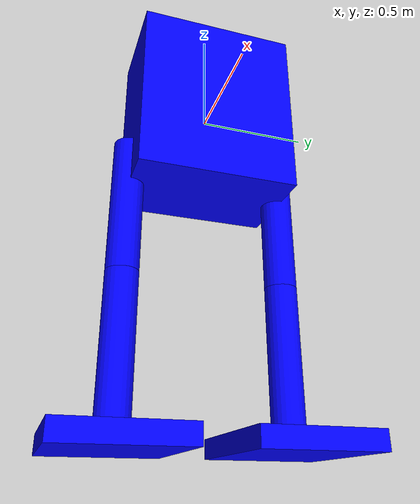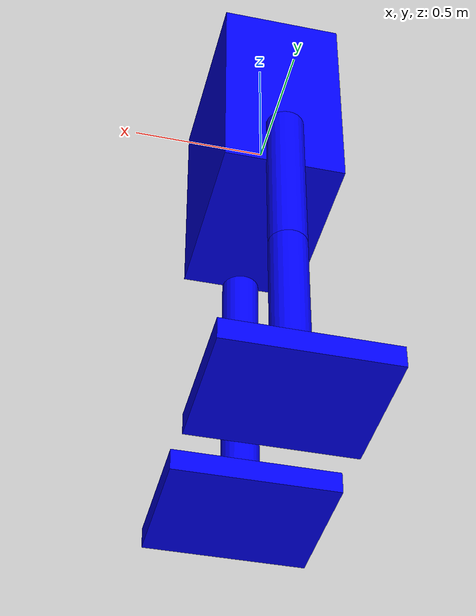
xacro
<?xml version="1.0"?>
<robot name="bipedal_robot" xmlns:xacro="http://www.ros.org/wiki/xacro">
    <xacro:include filename="$(find bipedal_robot)/urdf/core_bipedal_robot.urdf.xacro"/>

    <link name="dummy"></link>

    <joint name="dummy_joint" type="fixed">
        <parent link="dummy"/>
        <child link="base_link"/>
    </joint>

	<xacro:macro name="transmission" params="joint">
        <transmission name="${joint}_transmission">
            <type>transmission_interface/SimpleTransmission</type>
            <joint name="${joint}">
                <hardwareInterface>hardware_interface/EffortJointInterface</hardwareInterface>
            </joint>
            <actuator name="${joint}_motor">
                <hardwareInterface>hardware_interface/EffortJointInterface</hardwareInterface>
                <mechanicalReduction>1</mechanicalReduction>
            </actuator>
        </transmission>
	</xacro:macro>

	<xacro:macro name="contact" params="link">
        <gazebo reference="${link}">
            <mu1>10000.0</mu1>
            <mu2>10000.0</mu2>
            <minDepth>0.001</minDepth>
            <maxVel value="0.0"/>
        </gazebo>
	</xacro:macro>

	<gazebo reference="right_foot">
	    <collision name='right_foot_collision_collision'>
	        <surface>
                <bounce>
                    <restitution_coefficient>0.9</restitution_coefficient>
                    <threshold>0.0</threshold>
                </bounce>
            </surface>
	    </collision>
	</gazebo>

	<gazebo reference="left_foot">
	    <collision name='left_foot_collision_collision'>
	        <surface>
                <bounce>
                    <restitution_coefficient>0.9</restitution_coefficient>
                    <threshold>0.0</threshold>
                </bounce>
            </surface>
	    </collision>
	</gazebo>

	<xacro:transmission joint="left_hip_joint1"/>
	<xacro:transmission joint="left_hip_joint2"/>
	<xacro:transmission joint="left_knee_joint"/>
	<xacro:transmission joint="left_ankle_joint1"/>
	<xacro:transmission joint="left_ankle_joint2"/>
	<xacro:transmission joint="right_hip_joint1"/>
	<xacro:transmission joint="right_hip_joint2"/>
	<xacro:transmission joint="right_knee_joint"/>
	<xacro:transmission joint="right_ankle_joint1"/>
	<xacro:transmission joint="right_ankle_joint2"/>

	<xacro:contact link="base_link"/>
	<xacro:contact link="left_thigh"/>
	<xacro:contact link="left_shin"/>
	<xacro:contact link="left_foot"/>
	<xacro:contact link="right_thigh"/>
	<xacro:contact link="right_shin"/>
	<xacro:contact link="right_foot"/>

    <gazebo>
        <plugin name="gazebo_ros_control" filename="libgazebo_ros_control.so">
        </plugin>
    </gazebo>

    <gazebo reference="left_foot">
        <sensor name="left_foot_sensor" type="contact">
            <always_on>true</always_on>
            <contact>
                <collision>left_foot_collision_collision</collision>
            </contact>
            <plugin name="gazebo_ros_bumper_plugin" filename="libgazebo_ros_bumper.so">
                <bumperTopicName>left_foot_contact</bumperTopicName>
                <frameName>left_foot</frameName>
            </plugin>
        </sensor>
    </gazebo>

    <gazebo reference="right_foot">
        <sensor name="right_foot_sensor" type="contact">
            <always_on>true</always_on>
            <contact>
                <collision>right_foot_collision_collision</collision>
            </contact>
            <plugin name="gazebo_ros_bumper_plugin" filename="libgazebo_ros_bumper.so">
                <bumperTopicName>right_foot_contact</bumperTopicName>
                <frameName>right_foot</frameName>
            </plugin>
        </sensor>
    </gazebo>
</robot>

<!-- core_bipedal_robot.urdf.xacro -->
<robot name="bipedal_robot" xmlns:xacro="http://www.ros.org/wiki/xacro">
    <xacro:property name="torso_height" value="0.8"/>
    <xacro:property name="torso_width" value="0.7"/>
    <xacro:property name="thigh_len" value="0.6"/>
    <xacro:property name="shin_len" value="0.6"/>
    <xacro:property name="foot_thickness" value="0.08"/>

    <!-- Base link -->
	<link name="base_link">
		<visual>
			<origin xyz="0 0 0" rpy="0 0 0"/>
			<geometry>
				<box size="0.45 ${torso_width} ${torso_height}"/>
			</geometry>
			<material name="blue">
				<color rgba="0 0 1 1"/>
			</material>
		</visual>
		<collision name="base_link">
		    <origin xyz="0 0 0" rpy="0 0 0"/>
			<geometry>
				<box size="0.3 0.7 ${torso_height}"/>
			</geometry>
		</collision>
		<inertial>
            <mass value="1.1"/>
		    <origin xyz="0 0 0"/>
		    <inertia ixx="0.1" ixy="0.0" ixz="0.0" iyy="0.1" iyz="0.0" izz="0.1"/>
		</inertial>
	</link>

	<!-- Leg links and joints -->
	<xacro:macro name="leg" params="name shift hip_left_limit hip_right_limit">
	    <link name="${name}_hip_link">
	        <inertial>
                <mass value="0.01"/>
                <origin xyz="0 0 0"/>
                <inertia ixx="0.1" ixy="0.0" ixz="0.0" iyy="0.1" iyz="0.0" izz="0.1"/>
            </inertial>
	    </link>

        <link name="${name}_thigh">
            <visual>
                <origin xyz="0 0 ${-thigh_len/2}" rpy="0 0 0"/>
                <geometry>
                    <cylinder radius="0.07" length="${thigh_len}"/>
                </geometry>
                <material name="blue">
                    <color rgba="0 0 1 1"/>
                </material>
            </visual>
            <collision name="${name}_thigh_collision">
                <origin xyz="0 0 ${-thigh_len/2}" rpy="0 0 0"/>
                <geometry>
                    <cylinder radius="0.07" length="${thigh_len}"/>
                </geometry>
            </collision>
            <inertial>
                <mass value="1.9"/>
                <origin xyz="0 0 0"/>
                <inertia ixx="0.1" ixy="0.0" ixz="0.0" iyy="0.1" iyz="0.0" izz="0.1"/>
            </inertial>
        </link>

        <link name="${name}_shin">
            <visual>
                <origin xyz="0 0 ${-shin_len/2}" rpy="0 0 0"/>
                <geometry>
                    <cylinder radius="0.07" length="${shin_len}"/>
                </geometry>
                <material name="blue">
                    <color rgba="0 0 1 1"/>
                </material>
            </visual>
            <collision name="${name}_shin_collision">
                <origin xyz="0 0 ${-shin_len/2}" rpy="0 0 0"/>
                <geometry>
                    <cylinder radius="0.07" length="${shin_len}"/>
                </geometry>
            </collision>
            <inertial>
                <mass value="1.3"/>
                <origin xyz="0 0 0"/>
                <inertia ixx="0.1" ixy="0.0" ixz="0.0" iyy="0.1" iyz="0.0" izz="0.1"/>
            </inertial>
        </link>

        <link name="${name}_ankle_link">
            <inertial>
                <mass value="0.01"/>
                <origin xyz="0 0 0"/>
                <inertia ixx="0.1" ixy="0.0" ixz="0.0" iyy="0.1" iyz="0.0" izz="0.1"/>
            </inertial>
        </link>

        <link name="${name}_foot">
            <visual>
                <origin xyz="0 0 ${-foot_thickness/2}" rpy="0 0 0"/>
                <geometry>
                    <box size="0.6 0.5 ${foot_thickness}" />
                </geometry>
                <material name="blue">
                    <color rgba="0 0 1 1"/>
                </material>
            </visual>
            <collision name="${name}_foot_collision">
                <origin xyz="0 0 ${-foot_thickness/2}" rpy="0 0 0"/>
                <geometry>
                    <box size="0.6 0.5 ${foot_thickness}" />
                </geometry>
            </collision>
            <inertial>
                <mass value="1.3"/>
                <origin xyz="0 0 0"/>
                <inertia ixx="0.1" ixy="0.0" ixz="0.0" iyy="0.1" iyz="0.0" izz="0.1"/>
            </inertial>
        </link>

        <joint name="${name}_hip_joint1" type="revolute">
            <parent link="base_link"/>
            <child link="${name}_hip_link"/>
            <origin xyz="0 ${shift} ${-torso_height/2+0.2}" rpy="0 0 0"/>
            <axis xyz="0 1 0"/>
            <limit lower="-1.57" upper="0.52" effort="50" velocity="10"/>
            <dynamics damping="0.3" friction="0.07"/>
        </joint>

        <joint name="${name}_hip_joint2" type="revolute">
            <parent link="${name}_hip_link"/>
            <child link="${name}_thigh"/>
            <origin xyz="0 0 0" rpy="0 0 0"/>
            <axis xyz="1 0 0"/>
            <limit lower="${hip_left_limit}" upper="${hip_right_limit}" effort="50" velocity="10"/>
            <dynamics damping="0.3" friction="0.07"/>
        </joint>

        <joint name="${name}_knee_joint" type="revolute">
            <parent link="${name}_thigh"/>
            <child link="${name}_shin"/>
            <origin xyz="0 0 ${-thigh_len}" rpy="0 0 0"/>
            <axis xyz="0 1 0"/>
            <limit lower="-0.17" upper="1.57" effort="50" velocity="10"/>
            <dynamics damping="0.2" friction="0"/>
        </joint>

        <joint name="${name}_ankle_joint1" type="revolute">
            <parent link="${name}_shin"/>
            <child link="${name}_ankle_link"/>
            <origin xyz="0 0 ${-shin_len}" rpy="0 0 0"/>
            <axis xyz="0 1 0"/>
            <limit lower="-1.05" upper="0.52" effort="30" velocity="10"/>
            <dynamics friction="0"/>
        </joint>

        <joint name="${name}_ankle_joint2" type="revolute">
            <parent link="${name}_ankle_link"/>
            <child link="${name}_foot"/>
            <origin xyz="0 0 0" rpy="0 0 0"/>
            <axis xyz="1 0 0"/>
            <limit lower="-0.52" upper="0.52" effort="30" velocity="10"/>
            <dynamics friction="0"/>
        </joint>
	</xacro:macro>

	<xacro:leg name="left" shift="${torso_width/2}" hip_left_limit="-0.26" hip_right_limit="0.78"/>
	<xacro:leg name="right" shift="${-torso_width/2}" hip_left_limit="-0.78" hip_right_limit="0.26"/>
</robot>
